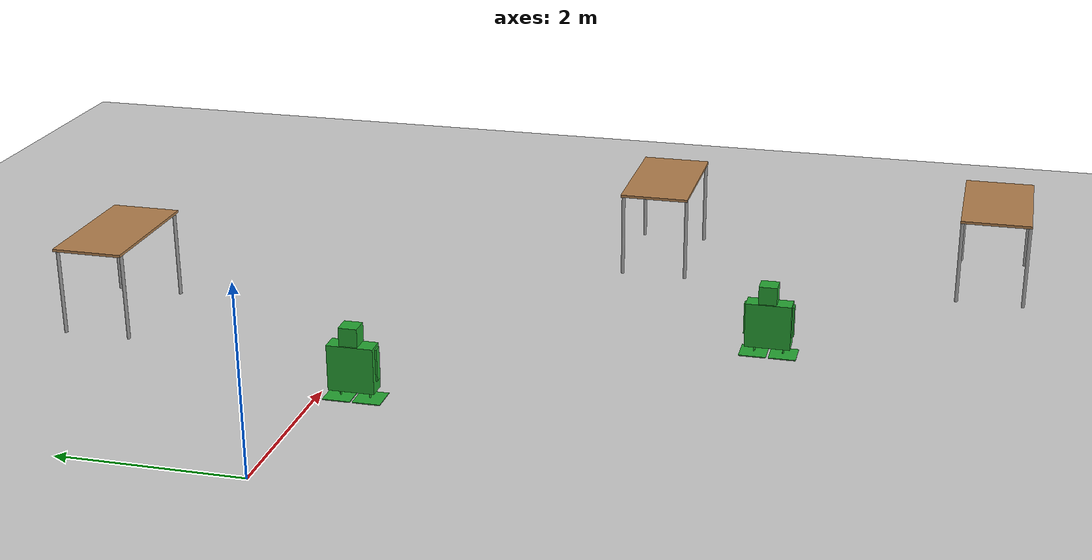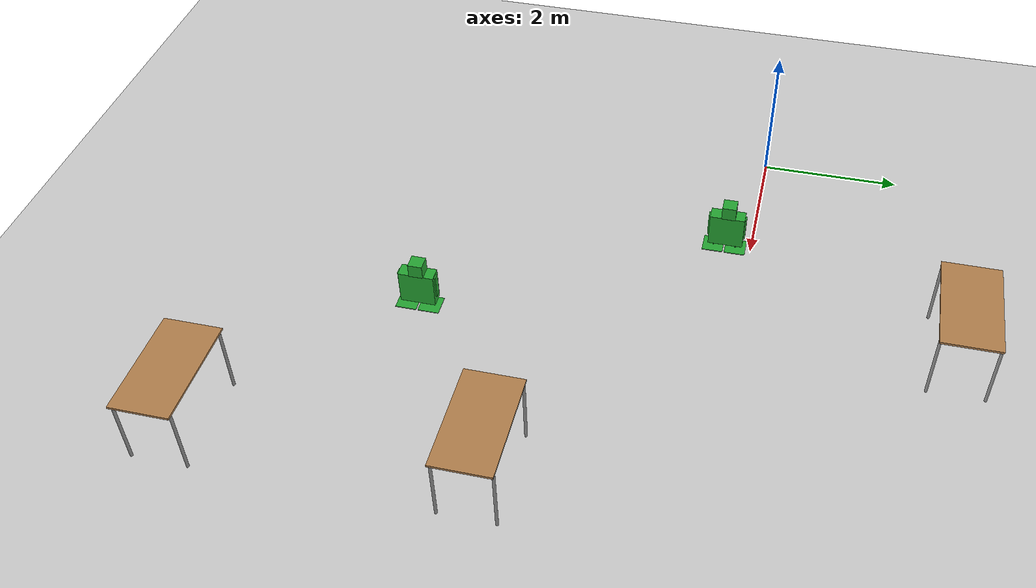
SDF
<sdf version="1.6">
 <world name="default">
  <model name="ground_plane">
   <static>1</static>
   <link name="link">
    <collision name="collision">
     <geometry><plane><normal>0 0 1</normal><size>100 100</size></plane></geometry>
     <surface><friction><ode><mu>100</mu><mu2>50</mu2></ode></friction></surface>
    </collision>
    <visual name="visual">
     <cast_shadows>0</cast_shadows>
     <geometry><plane><normal>0 0 1</normal><size>100 100</size></plane></geometry>
     <material>
      <script><uri>file://media/materials/scripts/gazebo.material</uri><name>Gazebo/Grey</name></script>
     </material>
    </visual>
   </link>
  </model>
  <model name="table">
   <static>1</static>
   <link name="link">
    <collision name="surface">
     <pose>0 0 1 0 -0 0</pose>
     <geometry><box><size>1.5 0.8 0.03</size></box></geometry>
     <surface><friction><ode><mu>0.6</mu><mu2>0.6</mu2></ode></friction></surface>
    </collision>
    <visual name="visual1">
     <pose>0 0 1 0 -0 0</pose>
     <geometry><box><size>1.5 0.8 0.03</size></box></geometry>
     <material>
      <script><uri>file://media/materials/scripts/gazebo.material</uri><name>Gazebo/Wood</name></script>
     </material>
    </visual>
    <collision name="front_left_leg">
     <pose>0.68 0.38 0.5 0 -0 0</pose>
     <geometry><cylinder><radius>0.02</radius><length>1</length></cylinder></geometry>
    </collision>
    <visual name="front_left_leg">
     <pose>0.68 0.38 0.5 0 -0 0</pose>
     <geometry><cylinder><radius>0.02</radius><length>1</length></cylinder></geometry>
     <material>
      <script><uri>file://media/materials/scripts/gazebo.material</uri><name>Gazebo/Grey</name></script>
     </material>
    </visual>
    <collision name="front_right_leg">
     <pose>0.68 -0.38 0.5 0 -0 0</pose>
     <geometry><cylinder><radius>0.02</radius><length>1</length></cylinder></geometry>
    </collision>
    <visual name="front_right_leg">
     <pose>0.68 -0.38 0.5 0 -0 0</pose>
     <geometry><cylinder><radius>0.02</radius><length>1</length></cylinder></geometry>
     <material>
      <script><uri>file://media/materials/scripts/gazebo.material</uri><name>Gazebo/Grey</name></script>
     </material>
    </visual>
    <collision name="back_right_leg">
     <pose>-0.68 -0.38 0.5 0 -0 0</pose>
     <geometry><cylinder><radius>0.02</radius><length>1</length></cylinder></geometry>
    </collision>
    <visual name="back_right_leg">
     <pose>-0.68 -0.38 0.5 0 -0 0</pose>
     <geometry><cylinder><radius>0.02</radius><length>1</length></cylinder></geometry>
     <material>
      <script><uri>file://media/materials/scripts/gazebo.material</uri><name>Gazebo/Grey</name></script>
     </material>
    </visual>
    <collision name="back_left_leg">
     <pose>-0.68 0.38 0.5 0 -0 0</pose>
     <geometry><cylinder><radius>0.02</radius><length>1</length></cylinder></geometry>
    </collision>
    <visual name="back_left_leg">
     <pose>-0.68 0.38 0.5 0 -0 0</pose>
     <geometry><cylinder><radius>0.02</radius><length>1</length></cylinder></geometry>
     <material>
      <script><uri>file://media/materials/scripts/gazebo.material</uri><name>Gazebo/Grey</name></script>
     </material>
    </visual>
   </link>
   <pose>3.47581 2.95191 0 0 -0 0</pose>
  </model>
  <model name="table_4">
   <static>1</static>
   <link name="link">
    <collision name="surface">
     <pose>0 0 1 0 -0 0</pose>
     <geometry><box><size>1.5 0.8 0.03</size></box></geometry>
     <surface><friction><ode><mu>0.6</mu><mu2>0.6</mu2></ode></friction></surface>
    </collision>
    <visual name="visual1">
     <pose>0 0 1 0 -0 0</pose>
     <geometry><box><size>1.5 0.8 0.03</size></box></geometry>
     <material>
      <script><uri>file://media/materials/scripts/gazebo.material</uri><name>Gazebo/Wood</name></script>
     </material>
    </visual>
    <collision name="front_left_leg">
     <pose>0.68 0.38 0.5 0 -0 0</pose>
     <geometry><cylinder><radius>0.02</radius><length>1</length></cylinder></geometry>
    </collision>
    <visual name="front_left_leg">
     <pose>0.68 0.38 0.5 0 -0 0</pose>
     <geometry><cylinder><radius>0.02</radius><length>1</length></cylinder></geometry>
     <material>
      <script><uri>file://media/materials/scripts/gazebo.material</uri><name>Gazebo/Grey</name></script>
     </material>
    </visual>
    <collision name="front_right_leg">
     <pose>0.68 -0.38 0.5 0 -0 0</pose>
     <geometry><cylinder><radius>0.02</radius><length>1</length></cylinder></geometry>
    </collision>
    <visual name="front_right_leg">
     <pose>0.68 -0.38 0.5 0 -0 0</pose>
     <geometry><cylinder><radius>0.02</radius><length>1</length></cylinder></geometry>
     <material>
      <script><uri>file://media/materials/scripts/gazebo.material</uri><name>Gazebo/Grey</name></script>
     </material>
    </visual>
    <collision name="back_right_leg">
     <pose>-0.68 -0.38 0.5 0 -0 0</pose>
     <geometry><cylinder><radius>0.02</radius><length>1</length></cylinder></geometry>
    </collision>
    <visual name="back_right_leg">
     <pose>-0.68 -0.38 0.5 0 -0 0</pose>
     <geometry><cylinder><radius>0.02</radius><length>1</length></cylinder></geometry>
     <material>
      <script><uri>file://media/materials/scripts/gazebo.material</uri><name>Gazebo/Grey</name></script>
     </material>
    </visual>
    <collision name="back_left_leg">
     <pose>-0.68 0.38 0.5 0 -0 0</pose>
     <geometry><cylinder><radius>0.02</radius><length>1</length></cylinder></geometry>
    </collision>
    <visual name="back_left_leg">
     <pose>-0.68 0.38 0.5 0 -0 0</pose>
     <geometry><cylinder><radius>0.02</radius><length>1</length></cylinder></geometry>
     <material>
      <script><uri>file://media/materials/scripts/gazebo.material</uri><name>Gazebo/Grey</name></script>
     </material>
    </visual>
   </link>
   <pose>6.74449 -6.68244 0 0 -0 0</pose>
  </model>
  <model name="table_5">
   <static>1</static>
   <link name="link">
    <collision name="surface">
     <pose>0 0 1 0 -0 0</pose>
     <geometry><box><size>1.5 0.8 0.03</size></box></geometry>
     <surface><friction><ode><mu>0.6</mu><mu2>0.6</mu2></ode></friction></surface>
    </collision>
    <visual name="visual1">
     <pose>0 0 1 0 -0 0</pose>
     <geometry><box><size>1.5 0.8 0.03</size></box></geometry>
     <material>
      <script><uri>file://media/materials/scripts/gazebo.material</uri><name>Gazebo/Wood</name></script>
     </material>
    </visual>
    <collision name="front_left_leg">
     <pose>0.68 0.38 0.5 0 -0 0</pose>
     <geometry><cylinder><radius>0.02</radius><length>1</length></cylinder></geometry>
    </collision>
    <visual name="front_left_leg">
     <pose>0.68 0.38 0.5 0 -0 0</pose>
     <geometry><cylinder><radius>0.02</radius><length>1</length></cylinder></geometry>
     <material>
      <script><uri>file://media/materials/scripts/gazebo.material</uri><name>Gazebo/Grey</name></script>
     </material>
    </visual>
    <collision name="front_right_leg">
     <pose>0.68 -0.38 0.5 0 -0 0</pose>
     <geometry><cylinder><radius>0.02</radius><length>1</length></cylinder></geometry>
    </collision>
    <visual name="front_right_leg">
     <pose>0.68 -0.38 0.5 0 -0 0</pose>
     <geometry><cylinder><radius>0.02</radius><length>1</length></cylinder></geometry>
     <material>
      <script><uri>file://media/materials/scripts/gazebo.material</uri><name>Gazebo/Grey</name></script>
     </material>
    </visual>
    <collision name="back_right_leg">
     <pose>-0.68 -0.38 0.5 0 -0 0</pose>
     <geometry><cylinder><radius>0.02</radius><length>1</length></cylinder></geometry>
    </collision>
    <visual name="back_right_leg">
     <pose>-0.68 -0.38 0.5 0 -0 0</pose>
     <geometry><cylinder><radius>0.02</radius><length>1</length></cylinder></geometry>
     <material>
      <script><uri>file://media/materials/scripts/gazebo.material</uri><name>Gazebo/Grey</name></script>
     </material>
    </visual>
    <collision name="back_left_leg">
     <pose>-0.68 0.38 0.5 0 -0 0</pose>
     <geometry><cylinder><radius>0.02</radius><length>1</length></cylinder></geometry>
    </collision>
    <visual name="back_left_leg">
     <pose>-0.68 0.38 0.5 0 -0 0</pose>
     <geometry><cylinder><radius>0.02</radius><length>1</length></cylinder></geometry>
     <material>
      <script><uri>file://media/materials/scripts/gazebo.material</uri><name>Gazebo/Grey</name></script>
     </material>
    </visual>
   </link>
   <pose>6.71633 -2.72133 0 0 -0 0</pose>
  </model>
  <model name="robot">
   <link name="foot_1">
    <pose>-0.002177 -0.002528 -0.025294 0 -0 0</pose>
    <inertial>
     <mass>1</mass>
     <inertia>
      <ixx>0.166667</ixx>
      <ixy>0</ixy>
      <ixz>0</ixz>
      <iyy>0.166667</iyy>
      <iyz>0</iyz>
      <izz>0.166667</izz>
     </inertia>
    </inertial>
    <visual name="visual">
     <geometry><box><size>0.3 0.3 0.01</size></box></geometry>
     <material>
      <lighting>1</lighting>
      <script><uri>file://media/materials/scripts/gazebo.material</uri><name>Gazebo/Green</name></script>
     </material>
    </visual>
    <collision name="collision">
     <geometry><box><size>0.3 0.3 0.01</size></box></geometry>
     <surface>
      <friction>
       <ode><mu>1</mu><mu2>1</mu2><fdir1>0 0 0</fdir1><slip1>0</slip1><slip2>0</slip2></ode>
       <torsional>
        <coefficient>1</coefficient>
        <patch_radius>0</patch_radius>
        <surface_radius>0</surface_radius>
        <use_patch_radius>1</use_patch_radius>
        <ode><slip>0</slip></ode>
       </torsional>
      </friction>
      <bounce><restitution_coefficient>0</restitution_coefficient><threshold>1e+06</threshold></bounce>
      <contact>
       <collide_without_contact>0</collide_without_contact>
       <collide_without_contact_bitmask>1</collide_without_contact_bitmask>
       <collide_bitmask>1</collide_bitmask>
       <ode>
        <soft_cfm>0</soft_cfm>
        <soft_erp>0.2</soft_erp>
        <kp>1e+13</kp>
        <kd>1</kd>
        <max_vel>0.01</max_vel>
        <min_depth>0</min_depth>
       </ode>
       <bullet>
        <split_impulse>1</split_impulse>
        <split_impulse_penetration_threshold>-0.01</split_impulse_penetration_threshold>
        <soft_cfm>0</soft_cfm>
        <soft_erp>0.2</soft_erp>
        <kp>1e+13</kp>
        <kd>1</kd>
       </bullet>
      </contact>
     </surface>
    </collision>
   </link>
   <link name="arm_1">
    <pose>-0.003122 -0.091998 0.37 -3e-06 -0 -2e-05</pose>
    <inertial>
     <mass>1</mass>
     <inertia>
      <ixx>0.166667</ixx>
      <ixy>0</ixy>
      <ixz>0</ixz>
      <iyy>0.166667</iyy>
      <iyz>0</iyz>
      <izz>0.166667</izz>
     </inertia>
    </inertial>
    <visual name="visual">
     <geometry><box><size>0.09 0.02 0.35</size></box></geometry>
     <material>
      <lighting>1</lighting>
      <script><uri>file://media/materials/scripts/gazebo.material</uri><name>Gazebo/Green</name></script>
     </material>
    </visual>
    <collision name="collision">
     <geometry><box><size>0.09 0.02 0.35</size></box></geometry>
     <surface>
      <friction>
       <ode><mu>1</mu><mu2>1</mu2><fdir1>0 0 0</fdir1><slip1>0</slip1><slip2>0</slip2></ode>
       <torsional>
        <coefficient>1</coefficient>
        <patch_radius>0</patch_radius>
        <surface_radius>0</surface_radius>
        <use_patch_radius>1</use_patch_radius>
        <ode><slip>0</slip></ode>
       </torsional>
      </friction>
      <bounce><restitution_coefficient>0</restitution_coefficient><threshold>1e+06</threshold></bounce>
      <contact>
       <collide_without_contact>0</collide_without_contact>
       <collide_without_contact_bitmask>1</collide_without_contact_bitmask>
       <collide_bitmask>1</collide_bitmask>
       <ode>
        <soft_cfm>0</soft_cfm>
        <soft_erp>0.2</soft_erp>
        <kp>1e+13</kp>
        <kd>1</kd>
        <max_vel>0.01</max_vel>
        <min_depth>0</min_depth>
       </ode>
       <bullet>
        <split_impulse>1</split_impulse>
        <split_impulse_penetration_threshold>-0.01</split_impulse_penetration_threshold>
        <soft_cfm>0</soft_cfm>
        <soft_erp>0.2</soft_erp>
        <kp>1e+13</kp>
        <kd>1</kd>
       </bullet>
      </contact>
     </surface>
    </collision>
   </link>
   <link name="arm_2">
    <pose>-0.003122 0.431998 0.37 -6e-06 -0 -4e-05</pose>
    <inertial>
     <mass>1</mass>
     <inertia>
      <ixx>0.166667</ixx>
      <ixy>0</ixy>
      <ixz>0</ixz>
      <iyy>0.166667</iyy>
      <iyz>0</iyz>
      <izz>0.166667</izz>
     </inertia>
    </inertial>
    <visual name="visual">
     <geometry><box><size>0.09 0.02 0.35</size></box></geometry>
     <material>
      <lighting>1</lighting>
      <script><uri>file://media/materials/scripts/gazebo.material</uri><name>Gazebo/Green</name></script>
     </material>
    </visual>
    <collision name="collision">
     <geometry><box><size>0.09 0.02 0.35</size></box></geometry>
     <surface>
      <friction>
       <ode><mu>1</mu><mu2>1</mu2><fdir1>0 0 0</fdir1><slip1>0</slip1><slip2>0</slip2></ode>
       <torsional>
        <coefficient>1</coefficient>
        <patch_radius>0</patch_radius>
        <surface_radius>0</surface_radius>
        <use_patch_radius>1</use_patch_radius>
        <ode><slip>0</slip></ode>
       </torsional>
      </friction>
      <bounce><restitution_coefficient>0</restitution_coefficient><threshold>1e+06</threshold></bounce>
      <contact>
       <collide_without_contact>0</collide_without_contact>
       <collide_without_contact_bitmask>1</collide_without_contact_bitmask>
       <collide_bitmask>1</collide_bitmask>
       <ode>
        <soft_cfm>0</soft_cfm>
        <soft_erp>0.2</soft_erp>
        <kp>1e+13</kp>
        <kd>1</kd>
        <max_vel>0.01</max_vel>
        <min_depth>0</min_depth>
       </ode>
       <bullet>
        <split_impulse>1</split_impulse>
        <split_impulse_penetration_threshold>-0.01</split_impulse_penetration_threshold>
        <soft_cfm>0</soft_cfm>
        <soft_erp>0.2</soft_erp>
        <kp>1e+13</kp>
        <kd>1</kd>
       </bullet>
      </contact>
     </surface>
    </collision>
   </link>
   <link name="body">
    <pose>-0.009988 0.170319 0.318893 0 -0 0</pose>
    <inertial>
     <mass>1</mass>
     <inertia>
      <ixx>0.166667</ixx>
      <ixy>0</ixy>
      <ixz>0</ixz>
      <iyy>0.166667</iyy>
      <iyz>0</iyz>
      <izz>0.166667</izz>
     </inertia>
    </inertial>
    <visual name="visual">
     <geometry><box><size>0.2 0.5 0.5</size></box></geometry>
     <material>
      <lighting>1</lighting>
      <script><uri>file://media/materials/scripts/gazebo.material</uri><name>Gazebo/Green</name></script>
     </material>
    </visual>
    <collision name="collision">
     <geometry><box><size>0.2 0.5 0.5</size></box></geometry>
     <surface>
      <friction>
       <ode><mu>1</mu><mu2>1</mu2><fdir1>0 0 0</fdir1><slip1>0</slip1><slip2>0</slip2></ode>
       <torsional>
        <coefficient>1</coefficient>
        <patch_radius>0</patch_radius>
        <surface_radius>0</surface_radius>
        <use_patch_radius>1</use_patch_radius>
        <ode><slip>0</slip></ode>
       </torsional>
      </friction>
      <bounce><restitution_coefficient>0</restitution_coefficient><threshold>1e+06</threshold></bounce>
      <contact>
       <collide_without_contact>0</collide_without_contact>
       <collide_without_contact_bitmask>1</collide_without_contact_bitmask>
       <collide_bitmask>1</collide_bitmask>
       <ode>
        <soft_cfm>0</soft_cfm>
        <soft_erp>0.2</soft_erp>
        <kp>1e+13</kp>
        <kd>1</kd>
        <max_vel>0.01</max_vel>
        <min_depth>0</min_depth>
       </ode>
       <bullet>
        <split_impulse>1</split_impulse>
        <split_impulse_penetration_threshold>-0.01</split_impulse_penetration_threshold>
        <soft_cfm>0</soft_cfm>
        <soft_erp>0.2</soft_erp>
        <kp>1e+13</kp>
        <kd>1</kd>
       </bullet>
      </contact>
     </surface>
    </collision>
   </link>
   <link name="foot_2">
    <pose>-0.002177 0.32249 -0.025294 0 -0 0</pose>
    <inertial>
     <mass>1</mass>
     <inertia>
      <ixx>0.166667</ixx>
      <ixy>0</ixy>
      <ixz>0</ixz>
      <iyy>0.166667</iyy>
      <iyz>0</iyz>
      <izz>0.166667</izz>
     </inertia>
    </inertial>
    <visual name="visual">
     <geometry><box><size>0.3 0.3 0.01</size></box></geometry>
     <material>
      <lighting>1</lighting>
      <script><uri>file://media/materials/scripts/gazebo.material</uri><name>Gazebo/Green</name></script>
     </material>
    </visual>
    <collision name="collision">
     <geometry><box><size>0.3 0.3 0.01</size></box></geometry>
     <surface>
      <friction>
       <ode><mu>1</mu><mu2>1</mu2><fdir1>0 0 0</fdir1><slip1>0</slip1><slip2>0</slip2></ode>
       <torsional>
        <coefficient>1</coefficient>
        <patch_radius>0</patch_radius>
        <surface_radius>0</surface_radius>
        <use_patch_radius>1</use_patch_radius>
        <ode><slip>0</slip></ode>
       </torsional>
      </friction>
      <bounce><restitution_coefficient>0</restitution_coefficient><threshold>1e+06</threshold></bounce>
      <contact>
       <collide_without_contact>0</collide_without_contact>
       <collide_without_contact_bitmask>1</collide_without_contact_bitmask>
       <collide_bitmask>1</collide_bitmask>
       <ode>
        <soft_cfm>0</soft_cfm>
        <soft_erp>0.2</soft_erp>
        <kp>1e+13</kp>
        <kd>1</kd>
        <max_vel>0.01</max_vel>
        <min_depth>0</min_depth>
       </ode>
       <bullet>
        <split_impulse>1</split_impulse>
        <split_impulse_penetration_threshold>-0.01</split_impulse_penetration_threshold>
        <soft_cfm>0</soft_cfm>
        <soft_erp>0.2</soft_erp>
        <kp>1e+13</kp>
        <kd>1</kd>
       </bullet>
      </contact>
     </surface>
    </collision>
   </link>
   <link name="head">
    <pose>0.003947 0.184567 0.671241 0 -0 1e-06</pose>
    <inertial>
     <mass>1</mass>
     <inertia>
      <ixx>0.166667</ixx>
      <ixy>0</ixy>
      <ixz>0</ixz>
      <iyy>0.166667</iyy>
      <iyz>0</iyz>
      <izz>0.166667</izz>
     </inertia>
    </inertial>
    <visual name="visual">
     <geometry><box><size>0.2 0.2 0.2</size></box></geometry>
     <material>
      <lighting>1</lighting>
      <script><uri>file://media/materials/scripts/gazebo.material</uri><name>Gazebo/Green</name></script>
     </material>
    </visual>
    <collision name="collision">
     <geometry><box><size>0.2 0.2 0.2</size></box></geometry>
     <surface>
      <friction>
       <ode><mu>1</mu><mu2>1</mu2><fdir1>0 0 0</fdir1><slip1>0</slip1><slip2>0</slip2></ode>
       <torsional>
        <coefficient>1</coefficient>
        <patch_radius>0</patch_radius>
        <surface_radius>0</surface_radius>
        <use_patch_radius>1</use_patch_radius>
        <ode><slip>0</slip></ode>
       </torsional>
      </friction>
      <bounce><restitution_coefficient>0</restitution_coefficient><threshold>1e+06</threshold></bounce>
      <contact>
       <collide_without_contact>0</collide_without_contact>
       <collide_without_contact_bitmask>1</collide_without_contact_bitmask>
       <collide_bitmask>1</collide_bitmask>
       <ode>
        <soft_cfm>0</soft_cfm>
        <soft_erp>0.2</soft_erp>
        <kp>1e+13</kp>
        <kd>1</kd>
        <max_vel>0.01</max_vel>
        <min_depth>0</min_depth>
       </ode>
       <bullet>
        <split_impulse>1</split_impulse>
        <split_impulse_penetration_threshold>-0.01</split_impulse_penetration_threshold>
        <soft_cfm>0</soft_cfm>
        <soft_erp>0.2</soft_erp>
        <kp>1e+13</kp>
        <kd>1</kd>
       </bullet>
      </contact>
     </surface>
    </collision>
   </link>
   <link name="leg_1">
    <pose>0.002177 0.002528 0.025294 0 -0 0</pose>
    <inertial>
     <mass>1</mass>
     <inertia><ixx>0.145833</ixx><ixy>0</ixy><ixz>0</ixz><iyy>0.145833</iyy><iyz>0</iyz><izz>0.125</izz></inertia>
    </inertial>
    <visual name="visual">
     <geometry><cylinder><radius>0.01</radius><length>0.1</length></cylinder></geometry>
     <material>
      <lighting>1</lighting>
      <script><uri>file://media/materials/scripts/gazebo.material</uri><name>Gazebo/Green</name></script>
     </material>
    </visual>
    <collision name="collision">
     <geometry><cylinder><radius>0.01</radius><length>0.1</length></cylinder></geometry>
     <surface>
      <friction>
       <ode><mu>1</mu><mu2>1</mu2><fdir1>0 0 0</fdir1><slip1>0</slip1><slip2>0</slip2></ode>
       <torsional>
        <coefficient>1</coefficient>
        <patch_radius>0</patch_radius>
        <surface_radius>0</surface_radius>
        <use_patch_radius>1</use_patch_radius>
        <ode><slip>0</slip></ode>
       </torsional>
      </friction>
      <bounce><restitution_coefficient>0</restitution_coefficient><threshold>1e+06</threshold></bounce>
      <contact>
       <collide_without_contact>0</collide_without_contact>
       <collide_without_contact_bitmask>1</collide_without_contact_bitmask>
       <collide_bitmask>1</collide_bitmask>
       <ode>
        <soft_cfm>0</soft_cfm>
        <soft_erp>0.2</soft_erp>
        <kp>1e+13</kp>
        <kd>1</kd>
        <max_vel>0.01</max_vel>
        <min_depth>0</min_depth>
       </ode>
       <bullet>
        <split_impulse>1</split_impulse>
        <split_impulse_penetration_threshold>-0.01</split_impulse_penetration_threshold>
        <soft_cfm>0</soft_cfm>
        <soft_erp>0.2</soft_erp>
        <kp>1e+13</kp>
        <kd>1</kd>
       </bullet>
      </contact>
     </surface>
    </collision>
   </link>
   <link name="leg_2">
    <pose>0.00771 0.322829 0.025294 0 -0 0</pose>
    <inertial>
     <mass>1</mass>
     <inertia><ixx>0.145833</ixx><ixy>0</ixy><ixz>0</ixz><iyy>0.145833</iyy><iyz>0</iyz><izz>0.125</izz></inertia>
    </inertial>
    <visual name="visual">
     <geometry><cylinder><radius>0.01</radius><length>0.1</length></cylinder></geometry>
     <material>
      <lighting>1</lighting>
      <script><uri>file://media/materials/scripts/gazebo.material</uri><name>Gazebo/Green</name></script>
     </material>
    </visual>
    <collision name="collision">
     <geometry><cylinder><radius>0.01</radius><length>0.1</length></cylinder></geometry>
     <surface>
      <friction>
       <ode><mu>1</mu><mu2>1</mu2><fdir1>0 0 0</fdir1><slip1>0</slip1><slip2>0</slip2></ode>
       <torsional>
        <coefficient>1</coefficient>
        <patch_radius>0</patch_radius>
        <surface_radius>0</surface_radius>
        <use_patch_radius>1</use_patch_radius>
        <ode><slip>0</slip></ode>
       </torsional>
      </friction>
      <bounce><restitution_coefficient>0</restitution_coefficient><threshold>1e+06</threshold></bounce>
      <contact>
       <collide_without_contact>0</collide_without_contact>
       <collide_without_contact_bitmask>1</collide_without_contact_bitmask>
       <collide_bitmask>1</collide_bitmask>
       <ode>
        <soft_cfm>0</soft_cfm>
        <soft_erp>0.2</soft_erp>
        <kp>1e+13</kp>
        <kd>1</kd>
        <max_vel>0.01</max_vel>
        <min_depth>0</min_depth>
       </ode>
       <bullet>
        <split_impulse>1</split_impulse>
        <split_impulse_penetration_threshold>-0.01</split_impulse_penetration_threshold>
        <soft_cfm>0</soft_cfm>
        <soft_erp>0.2</soft_erp>
        <kp>1e+13</kp>
        <kd>1</kd>
       </bullet>
      </contact>
     </surface>
    </collision>
   </link>
   <joint name="body_arm_1" type="revolute">
    <parent>body</parent>
    <child>arm_1</child>
    <axis>
     <xyz>1 0 0</xyz>
     <use_parent_model_frame>0</use_parent_model_frame>
     <limit>
      <lower>-1.79769e+308</lower>
      <upper>1.79769e+308</upper>
      <effort>-1</effort>
      <velocity>-1</velocity>
     </limit>
     <dynamics>
      <spring_reference>0</spring_reference>
      <spring_stiffness>0</spring_stiffness>
      <damping>0</damping>
      <friction>0</friction>
     </dynamics>
    </axis>
    <physics>
     <ode><limit><cfm>0</cfm><erp>0.2</erp></limit><suspension><cfm>0</cfm><erp>0.2</erp></suspension></ode>
    </physics>
   </joint>
   <joint name="body_arm_2" type="revolute">
    <parent>body</parent>
    <child>arm_2</child>
    <axis>
     <xyz>1 0 0</xyz>
     <use_parent_model_frame>0</use_parent_model_frame>
     <limit>
      <lower>-1.79769e+308</lower>
      <upper>1.79769e+308</upper>
      <effort>-1</effort>
      <velocity>-1</velocity>
     </limit>
     <dynamics>
      <spring_reference>0</spring_reference>
      <spring_stiffness>0</spring_stiffness>
      <damping>0</damping>
      <friction>0</friction>
     </dynamics>
    </axis>
    <physics>
     <ode><limit><cfm>0</cfm><erp>0.2</erp></limit><suspension><cfm>0</cfm><erp>0.2</erp></suspension></ode>
    </physics>
   </joint>
   <joint name="body_head" type="revolute">
    <parent>body</parent>
    <child>head</child>
    <axis>
     <xyz>1 0 0</xyz>
     <use_parent_model_frame>0</use_parent_model_frame>
     <limit>
      <lower>-1.79769e+308</lower>
      <upper>1.79769e+308</upper>
      <effort>-1</effort>
      <velocity>-1</velocity>
     </limit>
     <dynamics>
      <spring_reference>0</spring_reference>
      <spring_stiffness>0</spring_stiffness>
      <damping>0</damping>
      <friction>0</friction>
     </dynamics>
    </axis>
    <physics>
     <ode><limit><cfm>0</cfm><erp>0.2</erp></limit><suspension><cfm>0</cfm><erp>0.2</erp></suspension></ode>
    </physics>
   </joint>
   <joint name="body_leg1" type="revolute">
    <parent>body</parent>
    <child>leg_1</child>
    <axis>
     <xyz>1 0 0</xyz>
     <use_parent_model_frame>0</use_parent_model_frame>
     <limit>
      <lower>-1.79769e+308</lower>
      <upper>1.79769e+308</upper>
      <effort>-1</effort>
      <velocity>-1</velocity>
     </limit>
     <dynamics>
      <spring_reference>0</spring_reference>
      <spring_stiffness>0</spring_stiffness>
      <damping>0</damping>
      <friction>0</friction>
     </dynamics>
    </axis>
    <physics>
     <ode><limit><cfm>0</cfm><erp>0.2</erp></limit><suspension><cfm>0</cfm><erp>0.2</erp></suspension></ode>
    </physics>
   </joint>
   <joint name="body_leg2" type="revolute">
    <parent>body</parent>
    <child>leg_2</child>
    <axis>
     <xyz>1 0 0</xyz>
     <use_parent_model_frame>0</use_parent_model_frame>
     <limit>
      <lower>-1.79769e+308</lower>
      <upper>1.79769e+308</upper>
      <effort>-1</effort>
      <velocity>-1</velocity>
     </limit>
     <dynamics>
      <spring_reference>0</spring_reference>
      <spring_stiffness>0</spring_stiffness>
      <damping>0</damping>
      <friction>0</friction>
     </dynamics>
    </axis>
    <physics>
     <ode><limit><cfm>0</cfm><erp>0.2</erp></limit><suspension><cfm>0</cfm><erp>0.2</erp></suspension></ode>
    </physics>
   </joint>
   <joint name="foot_leg_1" type="fixed">
    <parent>foot_1</parent>
    <child>leg_1</child>
    <pose>0 0 0 -0.09 0 0</pose>
    <physics>
     <ode><limit><cfm>0</cfm><erp>0.2</erp></limit><suspension><cfm>0</cfm><erp>0.2</erp></suspension></ode>
    </physics>
   </joint>
   <joint name="foot_leg_2" type="fixed">
    <parent>foot_2</parent>
    <child>leg_2</child>
    <physics>
     <ode><limit><cfm>0</cfm><erp>0.2</erp></limit><suspension><cfm>0</cfm><erp>0.2</erp></suspension></ode>
    </physics>
   </joint>
   <static>0</static>
   <pose>4.08186 -4.54759 0.030293 4e-06 -0 0.002825</pose>
  </model>
  <model name="robot_0">
   <link name="foot_1">
    <pose>-0.002177 -0.002528 -0.025294 0 -0 0</pose>
    <inertial>
     <mass>1</mass>
     <inertia>
      <ixx>0.166667</ixx>
      <ixy>0</ixy>
      <ixz>0</ixz>
      <iyy>0.166667</iyy>
      <iyz>0</iyz>
      <izz>0.166667</izz>
     </inertia>
    </inertial>
    <visual name="visual">
     <geometry><box><size>0.3 0.3 0.01</size></box></geometry>
     <material>
      <lighting>1</lighting>
      <script><uri>file://media/materials/scripts/gazebo.material</uri><name>Gazebo/Green</name></script>
     </material>
    </visual>
    <collision name="collision">
     <geometry><box><size>0.3 0.3 0.01</size></box></geometry>
     <surface>
      <friction>
       <ode><mu>1</mu><mu2>1</mu2><fdir1>0 0 0</fdir1><slip1>0</slip1><slip2>0</slip2></ode>
       <torsional>
        <coefficient>1</coefficient>
        <patch_radius>0</patch_radius>
        <surface_radius>0</surface_radius>
        <use_patch_radius>1</use_patch_radius>
        <ode><slip>0</slip></ode>
       </torsional>
      </friction>
      <bounce><restitution_coefficient>0</restitution_coefficient><threshold>1e+06</threshold></bounce>
      <contact>
       <collide_without_contact>0</collide_without_contact>
       <collide_without_contact_bitmask>1</collide_without_contact_bitmask>
       <collide_bitmask>1</collide_bitmask>
       <ode>
        <soft_cfm>0</soft_cfm>
        <soft_erp>0.2</soft_erp>
        <kp>1e+13</kp>
        <kd>1</kd>
        <max_vel>0.01</max_vel>
        <min_depth>0</min_depth>
       </ode>
       <bullet>
        <split_impulse>1</split_impulse>
        <split_impulse_penetration_threshold>-0.01</split_impulse_penetration_threshold>
        <soft_cfm>0</soft_cfm>
        <soft_erp>0.2</soft_erp>
        <kp>1e+13</kp>
        <kd>1</kd>
       </bullet>
      </contact>
     </surface>
    </collision>
   </link>
   <link name="arm_1">
    <pose>-0.003122 -0.091998 0.37 -3e-06 -0 -2e-05</pose>
    <inertial>
     <mass>1</mass>
     <inertia>
      <ixx>0.166667</ixx>
      <ixy>0</ixy>
      <ixz>0</ixz>
      <iyy>0.166667</iyy>
      <iyz>0</iyz>
      <izz>0.166667</izz>
     </inertia>
    </inertial>
    <visual name="visual">
     <geometry><box><size>0.09 0.02 0.35</size></box></geometry>
     <material>
      <lighting>1</lighting>
      <script><uri>file://media/materials/scripts/gazebo.material</uri><name>Gazebo/Green</name></script>
     </material>
    </visual>
    <collision name="collision">
     <geometry><box><size>0.09 0.02 0.35</size></box></geometry>
     <surface>
      <friction>
       <ode><mu>1</mu><mu2>1</mu2><fdir1>0 0 0</fdir1><slip1>0</slip1><slip2>0</slip2></ode>
       <torsional>
        <coefficient>1</coefficient>
        <patch_radius>0</patch_radius>
        <surface_radius>0</surface_radius>
        <use_patch_radius>1</use_patch_radius>
        <ode><slip>0</slip></ode>
       </torsional>
      </friction>
      <bounce><restitution_coefficient>0</restitution_coefficient><threshold>1e+06</threshold></bounce>
      <contact>
       <collide_without_contact>0</collide_without_contact>
       <collide_without_contact_bitmask>1</collide_without_contact_bitmask>
       <collide_bitmask>1</collide_bitmask>
       <ode>
        <soft_cfm>0</soft_cfm>
        <soft_erp>0.2</soft_erp>
        <kp>1e+13</kp>
        <kd>1</kd>
        <max_vel>0.01</max_vel>
        <min_depth>0</min_depth>
       </ode>
       <bullet>
        <split_impulse>1</split_impulse>
        <split_impulse_penetration_threshold>-0.01</split_impulse_penetration_threshold>
        <soft_cfm>0</soft_cfm>
        <soft_erp>0.2</soft_erp>
        <kp>1e+13</kp>
        <kd>1</kd>
       </bullet>
      </contact>
     </surface>
    </collision>
   </link>
   <link name="arm_2">
    <pose>-0.003122 0.431998 0.37 -6e-06 -0 -4e-05</pose>
    <inertial>
     <mass>1</mass>
     <inertia>
      <ixx>0.166667</ixx>
      <ixy>0</ixy>
      <ixz>0</ixz>
      <iyy>0.166667</iyy>
      <iyz>0</iyz>
      <izz>0.166667</izz>
     </inertia>
    </inertial>
    <visual name="visual">
     <geometry><box><size>0.09 0.02 0.35</size></box></geometry>
     <material>
      <lighting>1</lighting>
      <script><uri>file://media/materials/scripts/gazebo.material</uri><name>Gazebo/Green</name></script>
     </material>
    </visual>
    <collision name="collision">
     <geometry><box><size>0.09 0.02 0.35</size></box></geometry>
     <surface>
      <friction>
       <ode><mu>1</mu><mu2>1</mu2><fdir1>0 0 0</fdir1><slip1>0</slip1><slip2>0</slip2></ode>
       <torsional>
        <coefficient>1</coefficient>
        <patch_radius>0</patch_radius>
        <surface_radius>0</surface_radius>
        <use_patch_radius>1</use_patch_radius>
        <ode><slip>0</slip></ode>
       </torsional>
      </friction>
      <bounce><restitution_coefficient>0</restitution_coefficient><threshold>1e+06</threshold></bounce>
      <contact>
       <collide_without_contact>0</collide_without_contact>
       <collide_without_contact_bitmask>1</collide_without_contact_bitmask>
       <collide_bitmask>1</collide_bitmask>
       <ode>
        <soft_cfm>0</soft_cfm>
        <soft_erp>0.2</soft_erp>
        <kp>1e+13</kp>
        <kd>1</kd>
        <max_vel>0.01</max_vel>
        <min_depth>0</min_depth>
       </ode>
       <bullet>
        <split_impulse>1</split_impulse>
        <split_impulse_penetration_threshold>-0.01</split_impulse_penetration_threshold>
        <soft_cfm>0</soft_cfm>
        <soft_erp>0.2</soft_erp>
        <kp>1e+13</kp>
        <kd>1</kd>
       </bullet>
      </contact>
     </surface>
    </collision>
   </link>
   <link name="body">
    <pose>-0.009988 0.170319 0.318893 0 -0 0</pose>
    <inertial>
     <mass>1</mass>
     <inertia>
      <ixx>0.166667</ixx>
      <ixy>0</ixy>
      <ixz>0</ixz>
      <iyy>0.166667</iyy>
      <iyz>0</iyz>
      <izz>0.166667</izz>
     </inertia>
    </inertial>
    <visual name="visual">
     <geometry><box><size>0.2 0.5 0.5</size></box></geometry>
     <material>
      <lighting>1</lighting>
      <script><uri>file://media/materials/scripts/gazebo.material</uri><name>Gazebo/Green</name></script>
     </material>
    </visual>
    <collision name="collision">
     <geometry><box><size>0.2 0.5 0.5</size></box></geometry>
     <surface>
      <friction>
       <ode><mu>1</mu><mu2>1</mu2><fdir1>0 0 0</fdir1><slip1>0</slip1><slip2>0</slip2></ode>
       <torsional>
        <coefficient>1</coefficient>
        <patch_radius>0</patch_radius>
        <surface_radius>0</surface_radius>
        <use_patch_radius>1</use_patch_radius>
        <ode><slip>0</slip></ode>
       </torsional>
      </friction>
      <bounce><restitution_coefficient>0</restitution_coefficient><threshold>1e+06</threshold></bounce>
      <contact>
       <collide_without_contact>0</collide_without_contact>
       <collide_without_contact_bitmask>1</collide_without_contact_bitmask>
       <collide_bitmask>1</collide_bitmask>
       <ode>
        <soft_cfm>0</soft_cfm>
        <soft_erp>0.2</soft_erp>
        <kp>1e+13</kp>
        <kd>1</kd>
        <max_vel>0.01</max_vel>
        <min_depth>0</min_depth>
       </ode>
       <bullet>
        <split_impulse>1</split_impulse>
        <split_impulse_penetration_threshold>-0.01</split_impulse_penetration_threshold>
        <soft_cfm>0</soft_cfm>
        <soft_erp>0.2</soft_erp>
        <kp>1e+13</kp>
        <kd>1</kd>
       </bullet>
      </contact>
     </surface>
    </collision>
   </link>
   <link name="foot_2">
    <pose>-0.002177 0.32249 -0.025294 0 -0 0</pose>
    <inertial>
     <mass>1</mass>
     <inertia>
      <ixx>0.166667</ixx>
      <ixy>0</ixy>
      <ixz>0</ixz>
      <iyy>0.166667</iyy>
      <iyz>0</iyz>
      <izz>0.166667</izz>
     </inertia>
    </inertial>
    <visual name="visual">
     <geometry><box><size>0.3 0.3 0.01</size></box></geometry>
     <material>
      <lighting>1</lighting>
      <script><uri>file://media/materials/scripts/gazebo.material</uri><name>Gazebo/Green</name></script>
     </material>
    </visual>
    <collision name="collision">
     <geometry><box><size>0.3 0.3 0.01</size></box></geometry>
     <surface>
      <friction>
       <ode><mu>1</mu><mu2>1</mu2><fdir1>0 0 0</fdir1><slip1>0</slip1><slip2>0</slip2></ode>
       <torsional>
        <coefficient>1</coefficient>
        <patch_radius>0</patch_radius>
        <surface_radius>0</surface_radius>
        <use_patch_radius>1</use_patch_radius>
        <ode><slip>0</slip></ode>
       </torsional>
      </friction>
      <bounce><restitution_coefficient>0</restitution_coefficient><threshold>1e+06</threshold></bounce>
      <contact>
       <collide_without_contact>0</collide_without_contact>
       <collide_without_contact_bitmask>1</collide_without_contact_bitmask>
       <collide_bitmask>1</collide_bitmask>
       <ode>
        <soft_cfm>0</soft_cfm>
        <soft_erp>0.2</soft_erp>
        <kp>1e+13</kp>
        <kd>1</kd>
        <max_vel>0.01</max_vel>
        <min_depth>0</min_depth>
       </ode>
       <bullet>
        <split_impulse>1</split_impulse>
        <split_impulse_penetration_threshold>-0.01</split_impulse_penetration_threshold>
        <soft_cfm>0</soft_cfm>
        <soft_erp>0.2</soft_erp>
        <kp>1e+13</kp>
        <kd>1</kd>
       </bullet>
      </contact>
     </surface>
    </collision>
   </link>
   <link name="head">
    <pose>0.003947 0.184567 0.671241 0 -0 1e-06</pose>
    <inertial>
     <mass>1</mass>
     <inertia>
      <ixx>0.166667</ixx>
      <ixy>0</ixy>
      <ixz>0</ixz>
      <iyy>0.166667</iyy>
      <iyz>0</iyz>
      <izz>0.166667</izz>
     </inertia>
    </inertial>
    <visual name="visual">
     <geometry><box><size>0.2 0.2 0.2</size></box></geometry>
     <material>
      <lighting>1</lighting>
      <script><uri>file://media/materials/scripts/gazebo.material</uri><name>Gazebo/Green</name></script>
     </material>
    </visual>
    <collision name="collision">
     <geometry><box><size>0.2 0.2 0.2</size></box></geometry>
     <surface>
      <friction>
       <ode><mu>1</mu><mu2>1</mu2><fdir1>0 0 0</fdir1><slip1>0</slip1><slip2>0</slip2></ode>
       <torsional>
        <coefficient>1</coefficient>
        <patch_radius>0</patch_radius>
        <surface_radius>0</surface_radius>
        <use_patch_radius>1</use_patch_radius>
        <ode><slip>0</slip></ode>
       </torsional>
      </friction>
      <bounce><restitution_coefficient>0</restitution_coefficient><threshold>1e+06</threshold></bounce>
      <contact>
       <collide_without_contact>0</collide_without_contact>
       <collide_without_contact_bitmask>1</collide_without_contact_bitmask>
       <collide_bitmask>1</collide_bitmask>
       <ode>
        <soft_cfm>0</soft_cfm>
        <soft_erp>0.2</soft_erp>
        <kp>1e+13</kp>
        <kd>1</kd>
        <max_vel>0.01</max_vel>
        <min_depth>0</min_depth>
       </ode>
       <bullet>
        <split_impulse>1</split_impulse>
        <split_impulse_penetration_threshold>-0.01</split_impulse_penetration_threshold>
        <soft_cfm>0</soft_cfm>
        <soft_erp>0.2</soft_erp>
        <kp>1e+13</kp>
        <kd>1</kd>
       </bullet>
      </contact>
     </surface>
    </collision>
   </link>
   <link name="leg_1">
    <pose>0.002177 0.002528 0.025294 0 -0 0</pose>
    <inertial>
     <mass>1</mass>
     <inertia><ixx>0.145833</ixx><ixy>0</ixy><ixz>0</ixz><iyy>0.145833</iyy><iyz>0</iyz><izz>0.125</izz></inertia>
    </inertial>
    <visual name="visual">
     <geometry><cylinder><radius>0.01</radius><length>0.1</length></cylinder></geometry>
     <material>
      <lighting>1</lighting>
      <script><uri>file://media/materials/scripts/gazebo.material</uri><name>Gazebo/Green</name></script>
     </material>
    </visual>
    <collision name="collision">
     <geometry><cylinder><radius>0.01</radius><length>0.1</length></cylinder></geometry>
     <surface>
      <friction>
       <ode><mu>1</mu><mu2>1</mu2><fdir1>0 0 0</fdir1><slip1>0</slip1><slip2>0</slip2></ode>
       <torsional>
        <coefficient>1</coefficient>
        <patch_radius>0</patch_radius>
        <surface_radius>0</surface_radius>
        <use_patch_radius>1</use_patch_radius>
        <ode><slip>0</slip></ode>
       </torsional>
      </friction>
      <bounce><restitution_coefficient>0</restitution_coefficient><threshold>1e+06</threshold></bounce>
      <contact>
       <collide_without_contact>0</collide_without_contact>
       <collide_without_contact_bitmask>1</collide_without_contact_bitmask>
       <collide_bitmask>1</collide_bitmask>
       <ode>
        <soft_cfm>0</soft_cfm>
        <soft_erp>0.2</soft_erp>
        <kp>1e+13</kp>
        <kd>1</kd>
        <max_vel>0.01</max_vel>
        <min_depth>0</min_depth>
       </ode>
       <bullet>
        <split_impulse>1</split_impulse>
        <split_impulse_penetration_threshold>-0.01</split_impulse_penetration_threshold>
        <soft_cfm>0</soft_cfm>
        <soft_erp>0.2</soft_erp>
        <kp>1e+13</kp>
        <kd>1</kd>
       </bullet>
      </contact>
     </surface>
    </collision>
   </link>
   <link name="leg_2">
    <pose>0.00771 0.322829 0.025294 0 -0 0</pose>
    <inertial>
     <mass>1</mass>
     <inertia><ixx>0.145833</ixx><ixy>0</ixy><ixz>0</ixz><iyy>0.145833</iyy><iyz>0</iyz><izz>0.125</izz></inertia>
    </inertial>
    <visual name="visual">
     <geometry><cylinder><radius>0.01</radius><length>0.1</length></cylinder></geometry>
     <material>
      <lighting>1</lighting>
      <script><uri>file://media/materials/scripts/gazebo.material</uri><name>Gazebo/Green</name></script>
     </material>
    </visual>
    <collision name="collision">
     <geometry><cylinder><radius>0.01</radius><length>0.1</length></cylinder></geometry>
     <surface>
      <friction>
       <ode><mu>1</mu><mu2>1</mu2><fdir1>0 0 0</fdir1><slip1>0</slip1><slip2>0</slip2></ode>
       <torsional>
        <coefficient>1</coefficient>
        <patch_radius>0</patch_radius>
        <surface_radius>0</surface_radius>
        <use_patch_radius>1</use_patch_radius>
        <ode><slip>0</slip></ode>
       </torsional>
      </friction>
      <bounce><restitution_coefficient>0</restitution_coefficient><threshold>1e+06</threshold></bounce>
      <contact>
       <collide_without_contact>0</collide_without_contact>
       <collide_without_contact_bitmask>1</collide_without_contact_bitmask>
       <collide_bitmask>1</collide_bitmask>
       <ode>
        <soft_cfm>0</soft_cfm>
        <soft_erp>0.2</soft_erp>
        <kp>1e+13</kp>
        <kd>1</kd>
        <max_vel>0.01</max_vel>
        <min_depth>0</min_depth>
       </ode>
       <bullet>
        <split_impulse>1</split_impulse>
        <split_impulse_penetration_threshold>-0.01</split_impulse_penetration_threshold>
        <soft_cfm>0</soft_cfm>
        <soft_erp>0.2</soft_erp>
        <kp>1e+13</kp>
        <kd>1</kd>
       </bullet>
      </contact>
     </surface>
    </collision>
   </link>
   <joint name="body_arm_1" type="revolute">
    <parent>body</parent>
    <child>arm_1</child>
    <axis>
     <xyz>1 0 0</xyz>
     <use_parent_model_frame>0</use_parent_model_frame>
     <limit>
      <lower>-1.79769e+308</lower>
      <upper>1.79769e+308</upper>
      <effort>-1</effort>
      <velocity>-1</velocity>
     </limit>
     <dynamics>
      <spring_reference>0</spring_reference>
      <spring_stiffness>0</spring_stiffness>
      <damping>0</damping>
      <friction>0</friction>
     </dynamics>
    </axis>
    <physics>
     <ode><limit><cfm>0</cfm><erp>0.2</erp></limit><suspension><cfm>0</cfm><erp>0.2</erp></suspension></ode>
    </physics>
   </joint>
   <joint name="body_arm_2" type="revolute">
    <parent>body</parent>
    <child>arm_2</child>
    <axis>
     <xyz>1 0 0</xyz>
     <use_parent_model_frame>0</use_parent_model_frame>
     <limit>
      <lower>-1.79769e+308</lower>
      <upper>1.79769e+308</upper>
      <effort>-1</effort>
      <velocity>-1</velocity>
     </limit>
     <dynamics>
      <spring_reference>0</spring_reference>
      <spring_stiffness>0</spring_stiffness>
      <damping>0</damping>
      <friction>0</friction>
     </dynamics>
    </axis>
    <physics>
     <ode><limit><cfm>0</cfm><erp>0.2</erp></limit><suspension><cfm>0</cfm><erp>0.2</erp></suspension></ode>
    </physics>
   </joint>
   <joint name="body_head" type="revolute">
    <parent>body</parent>
    <child>head</child>
    <axis>
     <xyz>1 0 0</xyz>
     <use_parent_model_frame>0</use_parent_model_frame>
     <limit>
      <lower>-1.79769e+308</lower>
      <upper>1.79769e+308</upper>
      <effort>-1</effort>
      <velocity>-1</velocity>
     </limit>
     <dynamics>
      <spring_reference>0</spring_reference>
      <spring_stiffness>0</spring_stiffness>
      <damping>0</damping>
      <friction>0</friction>
     </dynamics>
    </axis>
    <physics>
     <ode><limit><cfm>0</cfm><erp>0.2</erp></limit><suspension><cfm>0</cfm><erp>0.2</erp></suspension></ode>
    </physics>
   </joint>
   <joint name="body_leg1" type="revolute">
    <parent>body</parent>
    <child>leg_1</child>
    <axis>
     <xyz>1 0 0</xyz>
     <use_parent_model_frame>0</use_parent_model_frame>
     <limit>
      <lower>-1.79769e+308</lower>
      <upper>1.79769e+308</upper>
      <effort>-1</effort>
      <velocity>-1</velocity>
     </limit>
     <dynamics>
      <spring_reference>0</spring_reference>
      <spring_stiffness>0</spring_stiffness>
      <damping>0</damping>
      <friction>0</friction>
     </dynamics>
    </axis>
    <physics>
     <ode><limit><cfm>0</cfm><erp>0.2</erp></limit><suspension><cfm>0</cfm><erp>0.2</erp></suspension></ode>
    </physics>
   </joint>
   <joint name="body_leg2" type="revolute">
    <parent>body</parent>
    <child>leg_2</child>
    <axis>
     <xyz>1 0 0</xyz>
     <use_parent_model_frame>0</use_parent_model_frame>
     <limit>
      <lower>-1.79769e+308</lower>
      <upper>1.79769e+308</upper>
      <effort>-1</effort>
      <velocity>-1</velocity>
     </limit>
     <dynamics>
      <spring_reference>0</spring_reference>
      <spring_stiffness>0</spring_stiffness>
      <damping>0</damping>
      <friction>0</friction>
     </dynamics>
    </axis>
    <physics>
     <ode><limit><cfm>0</cfm><erp>0.2</erp></limit><suspension><cfm>0</cfm><erp>0.2</erp></suspension></ode>
    </physics>
   </joint>
   <joint name="foot_leg_1" type="fixed">
    <parent>foot_1</parent>
    <child>leg_1</child>
    <pose>0 0 0 -0.09 0 0</pose>
    <physics>
     <ode><limit><cfm>0</cfm><erp>0.2</erp></limit><suspension><cfm>0</cfm><erp>0.2</erp></suspension></ode>
    </physics>
   </joint>
   <joint name="foot_leg_2" type="fixed">
    <parent>foot_2</parent>
    <child>leg_2</child>
    <physics>
     <ode><limit><cfm>0</cfm><erp>0.2</erp></limit><suspension><cfm>0</cfm><erp>0.2</erp></suspension></ode>
    </physics>
   </joint>
   <static>0</static>
   <pose>1.96349 -0.548061 0.030293 4e-06 -0 0.0027</pose>
  </model>
 </world>
</sdf>
